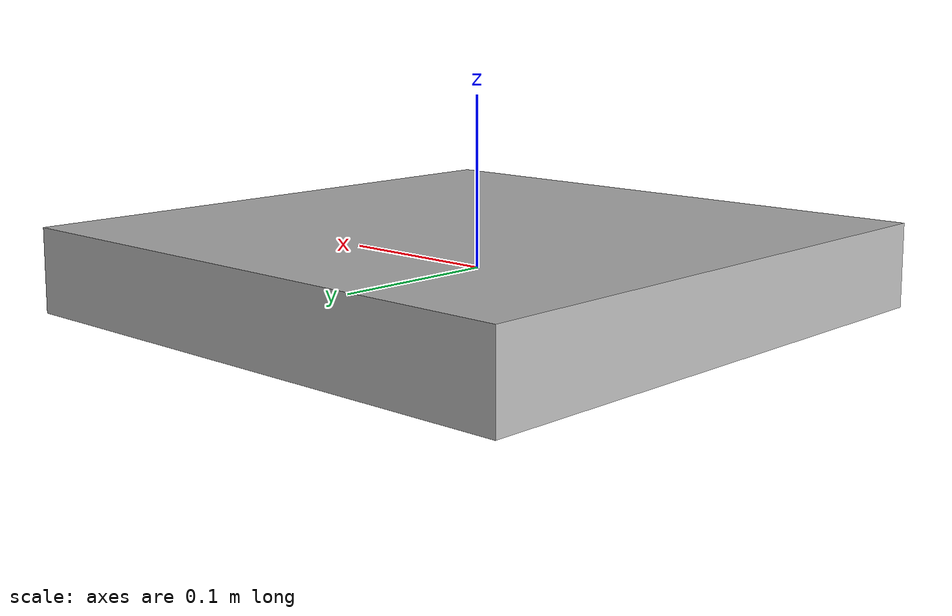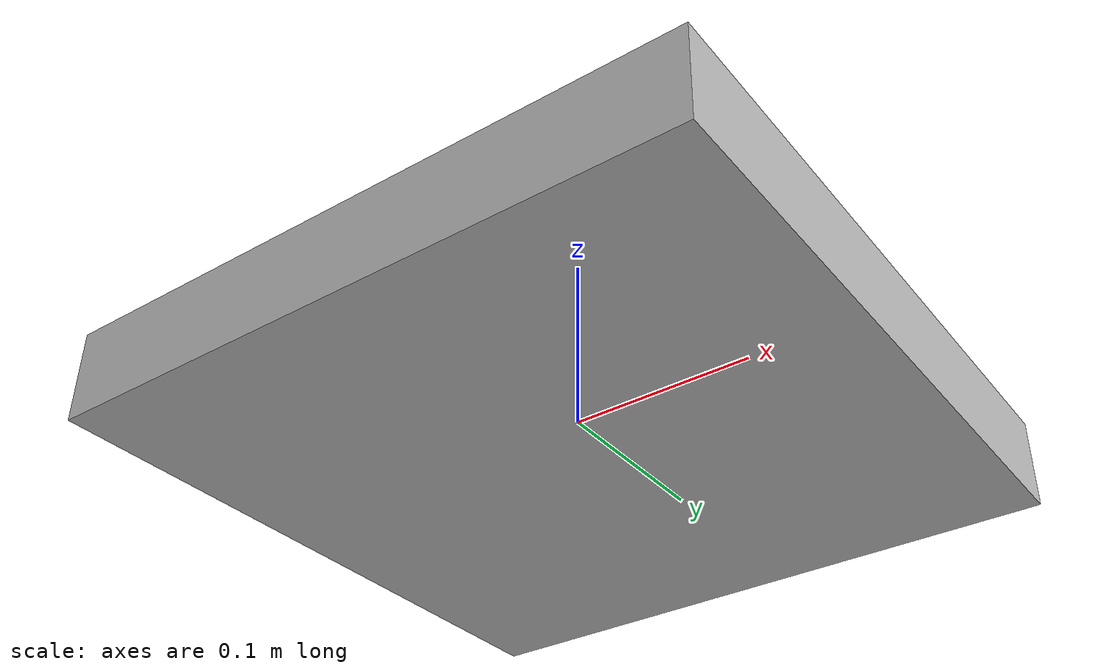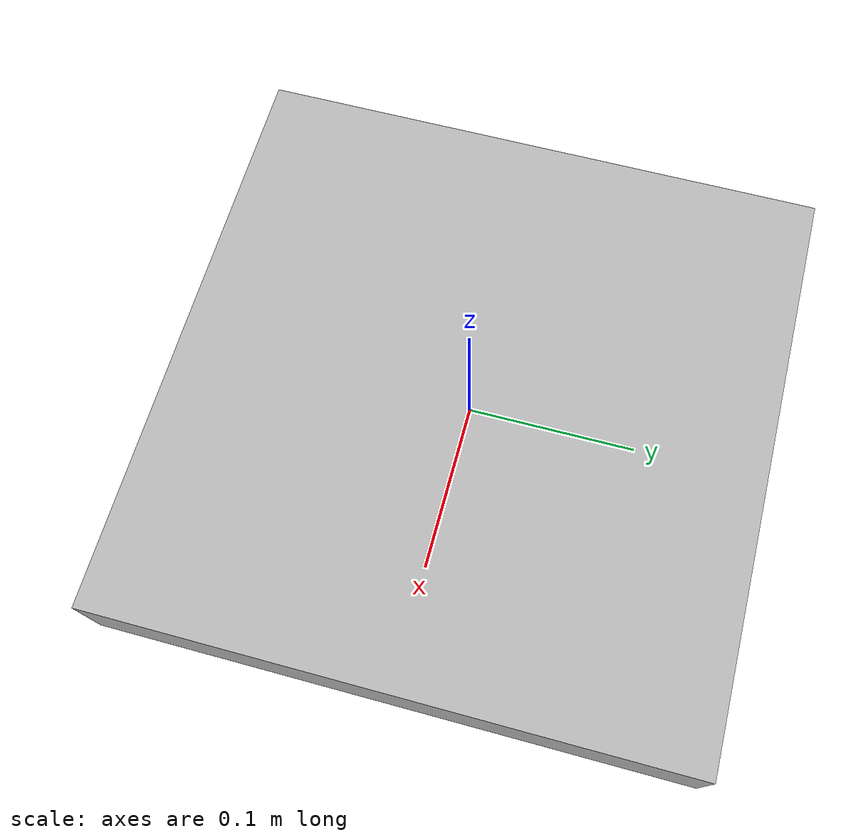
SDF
<?xml version='1.0'?>
<sdf version="1.5">

  <model name='Marker 35'>
    <pose frame=''>0 0 0 0 0 0</pose>
    <static>1</static>
    <link name='link'>

      <collision name='collision'>
        <geometry>
          <mesh>
		        <uri>model://marker_35/meshes/box_marker_35.dae</uri>
          </mesh>
        </geometry>
      </collision>

      <visual name='visual'>
        <cast_shadows>1</cast_shadows>
        <geometry>
          <mesh>
		        <uri>model://marker_35/meshes/box_marker_35.dae</uri>
          </mesh>
        </geometry>
      </visual>

      <self_collide>0</self_collide>
      <enable_wind>0</enable_wind>
      <kinematic>0</kinematic>

    </link>
  </model>
</sdf>
